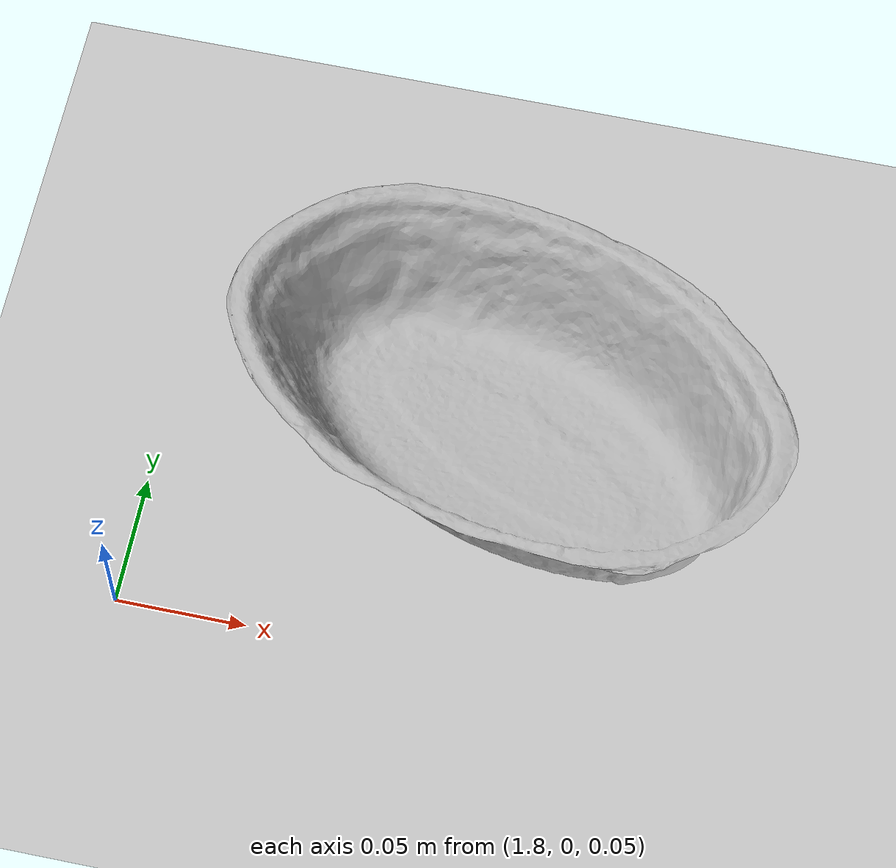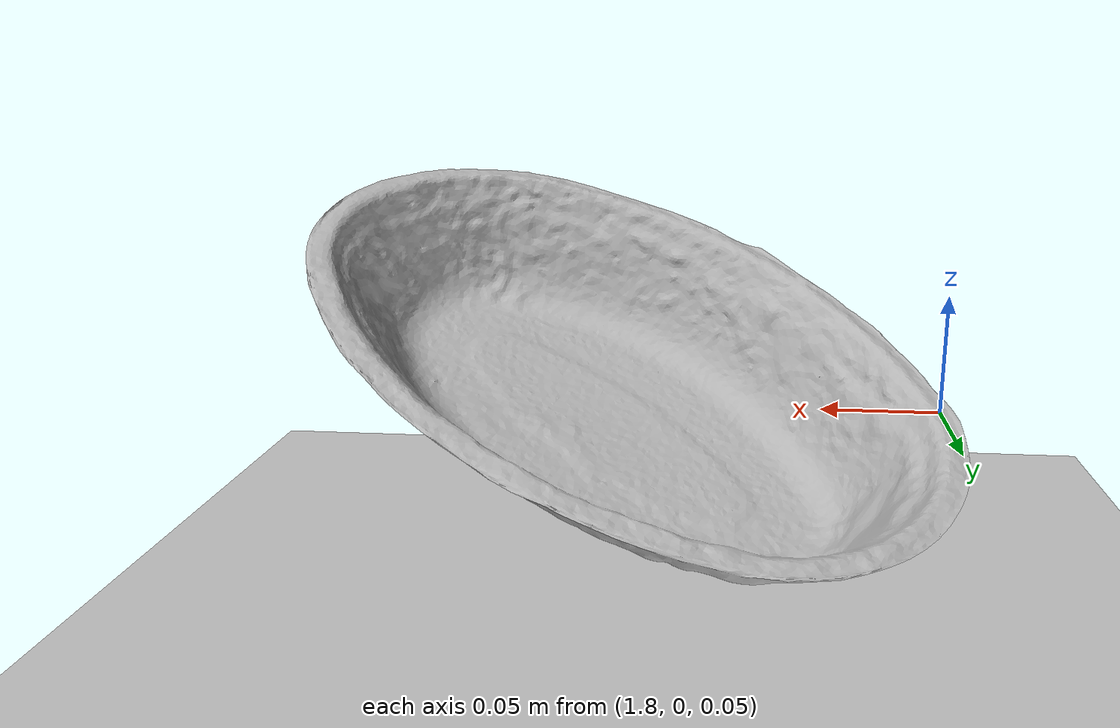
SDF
<?xml version="1.0"?>
<sdf version="1.4">
  <world name="default">
    <include>
      <uri>model://ground_plane</uri>
    </include>
    <include>
      <uri>model://sun</uri>
    </include>
    <model name="my_mesh">
      <pose>1.930447 0.096589 0.096589  0 1.335032 0</pose>
      <static>true</static>
      <link name="body">
        <visual name="visual">
          <geometry>
            <mesh><uri>file://poly.dae</uri></mesh>
          </geometry>
        </visual>
      </link>
    </model>
  </world>
</sdf>
